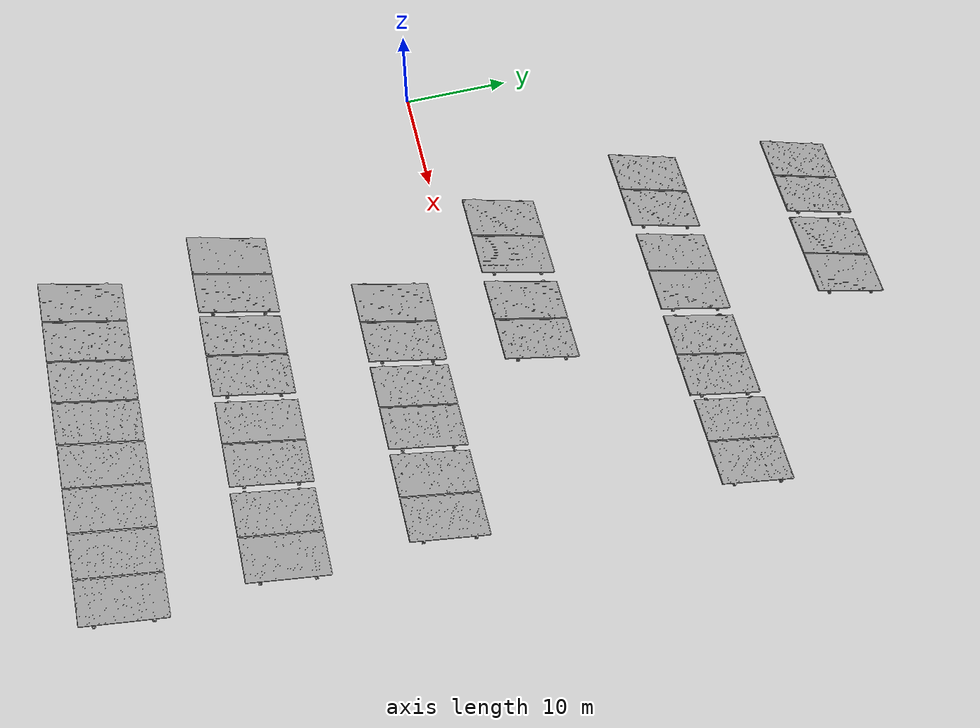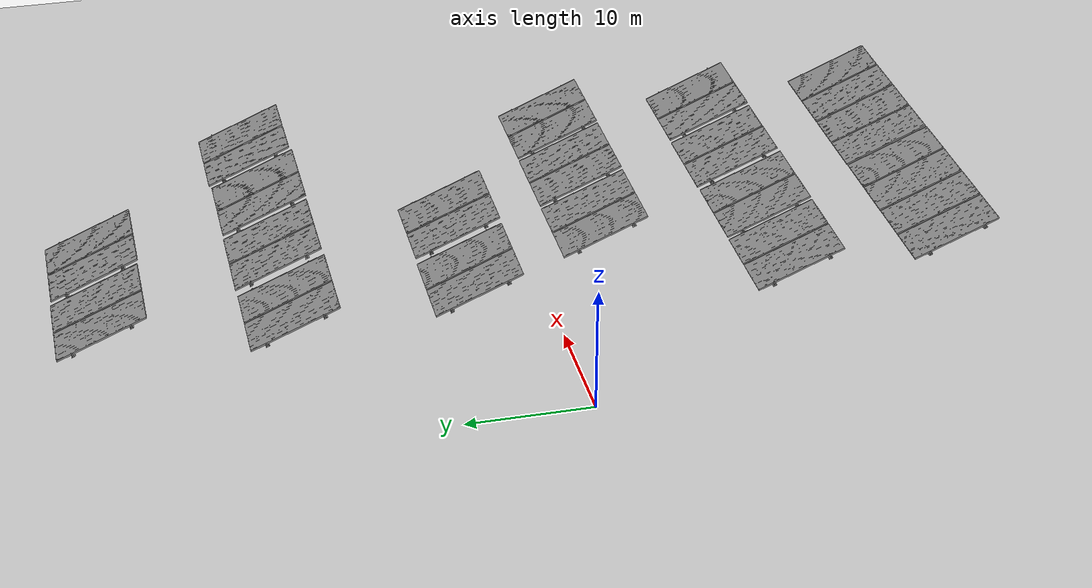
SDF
<sdf version="1.7">
 <world name="default">
  <model name="ground_plane">
   <static>1</static>
   <link name="link">
    <collision name="collision">
     <geometry><plane><normal>0 0 1</normal><size>100 100</size></plane></geometry>
     <surface>
      <contact><collide_bitmask>65535</collide_bitmask></contact>
      <friction><ode><mu>100</mu><mu2>50</mu2></ode></friction>
     </surface>
    </collision>
    <visual name="visual">
     <cast_shadows>0</cast_shadows>
     <geometry><plane><normal>0 0 1</normal><size>100 100</size></plane></geometry>
     <material>
      <script><uri>file://media/materials/scripts/gazebo.material</uri><name>Gazebo/Grey</name></script>
     </material>
    </visual>
   </link>
  </model>
  <model name="panelv4_clone">
   <link name="link_0">
    <inertial>
     <mass>1</mass>
     <inertia>
      <ixx>0.166667</ixx>
      <ixy>0</ixy>
      <ixz>0</ixz>
      <iyy>0.166667</iyy>
      <iyz>0</iyz>
      <izz>0.166667</izz>
     </inertia>
    </inertial>
    <pose>0 -0 0 -0.398224 0 0</pose>
    <gravity>0</gravity>
    <visual name="visual">
     <geometry><mesh><uri>model://Panel/panelsolar.obj</uri><scale>0.05 0.05 0.05</scale></mesh></geometry>
     <material>
      <lighting>1</lighting>
      <script><uri>file://media/materials/scripts/gazebo.material</uri><name>Gazebo/Grey</name></script>
      <shader type="pixel"><normal_map>__default__</normal_map></shader>
      <ambient>0.3 0.3 0.3 1</ambient>
      <diffuse>0.7 0.7 0.7 1</diffuse>
      <specular>0.01 0.01 0.01 1</specular>
      <emissive>0 0 0 1</emissive>
     </material>
    </visual>
    <collision name="collision">
     <geometry><mesh><uri>model://Panel/panelsolar.obj</uri><scale>0.05 0.05 0.05</scale></mesh></geometry>
     <surface>
      <friction>
       <ode><mu>1</mu><mu2>1</mu2><fdir1>0 0 0</fdir1><slip1>0</slip1><slip2>0</slip2></ode>
       <torsional>
        <coefficient>1</coefficient>
        <patch_radius>0</patch_radius>
        <surface_radius>0</surface_radius>
        <use_patch_radius>1</use_patch_radius>
        <ode><slip>0</slip></ode>
       </torsional>
      </friction>
      <bounce><restitution_coefficient>0</restitution_coefficient><threshold>1e+06</threshold></bounce>
      <contact>
       <collide_without_contact>0</collide_without_contact>
       <collide_without_contact_bitmask>1</collide_without_contact_bitmask>
       <collide_bitmask>1</collide_bitmask>
       <ode>
        <soft_cfm>0</soft_cfm>
        <soft_erp>0.2</soft_erp>
        <kp>1e+13</kp>
        <kd>1</kd>
        <max_vel>0.01</max_vel>
        <min_depth>0</min_depth>
       </ode>
       <bullet>
        <split_impulse>1</split_impulse>
        <split_impulse_penetration_threshold>-0.01</split_impulse_penetration_threshold>
        <soft_cfm>0</soft_cfm>
        <soft_erp>0.2</soft_erp>
        <kp>1e+13</kp>
        <kd>1</kd>
       </bullet>
      </contact>
     </surface>
    </collision>
   </link>
   <static>1</static>
   <pose>42 -34 2 0 -0 0</pose>
  </model>
  <model name="panelv4_clone_0">
   <link name="link_0">
    <inertial>
     <mass>1</mass>
     <inertia>
      <ixx>0.166667</ixx>
      <ixy>0</ixy>
      <ixz>0</ixz>
      <iyy>0.166667</iyy>
      <iyz>0</iyz>
      <izz>0.166667</izz>
     </inertia>
    </inertial>
    <pose>0 -0 0 -0.398224 0 0</pose>
    <gravity>0</gravity>
    <visual name="visual">
     <geometry><mesh><uri>model://Panel/panelsolar.obj</uri><scale>0.05 0.05 0.05</scale></mesh></geometry>
     <material>
      <lighting>1</lighting>
      <script><uri>file://media/materials/scripts/gazebo.material</uri><name>Gazebo/Grey</name></script>
      <shader type="pixel"><normal_map>__default__</normal_map></shader>
      <ambient>0.3 0.3 0.3 1</ambient>
      <diffuse>0.7 0.7 0.7 1</diffuse>
      <specular>0.01 0.01 0.01 1</specular>
      <emissive>0 0 0 1</emissive>
     </material>
    </visual>
    <collision name="collision">
     <geometry><mesh><uri>model://Panel/panelsolar.obj</uri><scale>0.05 0.05 0.05</scale></mesh></geometry>
     <surface>
      <friction>
       <ode><mu>1</mu><mu2>1</mu2><fdir1>0 0 0</fdir1><slip1>0</slip1><slip2>0</slip2></ode>
       <torsional>
        <coefficient>1</coefficient>
        <patch_radius>0</patch_radius>
        <surface_radius>0</surface_radius>
        <use_patch_radius>1</use_patch_radius>
        <ode><slip>0</slip></ode>
       </torsional>
      </friction>
      <bounce><restitution_coefficient>0</restitution_coefficient><threshold>1e+06</threshold></bounce>
      <contact>
       <collide_without_contact>0</collide_without_contact>
       <collide_without_contact_bitmask>1</collide_without_contact_bitmask>
       <collide_bitmask>1</collide_bitmask>
       <ode>
        <soft_cfm>0</soft_cfm>
        <soft_erp>0.2</soft_erp>
        <kp>1e+13</kp>
        <kd>1</kd>
        <max_vel>0.01</max_vel>
        <min_depth>0</min_depth>
       </ode>
       <bullet>
        <split_impulse>1</split_impulse>
        <split_impulse_penetration_threshold>-0.01</split_impulse_penetration_threshold>
        <soft_cfm>0</soft_cfm>
        <soft_erp>0.2</soft_erp>
        <kp>1e+13</kp>
        <kd>1</kd>
       </bullet>
      </contact>
     </surface>
    </collision>
   </link>
   <static>1</static>
   <pose>24.2399 -6.34265 1.99863 0 -0 0</pose>
  </model>
  <model name="panelv4_clone_1">
   <link name="link_0">
    <inertial>
     <mass>1</mass>
     <inertia>
      <ixx>0.166667</ixx>
      <ixy>0</ixy>
      <ixz>0</ixz>
      <iyy>0.166667</iyy>
      <iyz>0</iyz>
      <izz>0.166667</izz>
     </inertia>
    </inertial>
    <pose>0 -0 0 -0.398224 0 0</pose>
    <gravity>0</gravity>
    <visual name="visual">
     <geometry><mesh><uri>model://Panel/panelsolar.obj</uri><scale>0.05 0.05 0.05</scale></mesh></geometry>
     <material>
      <lighting>1</lighting>
      <script><uri>file://media/materials/scripts/gazebo.material</uri><name>Gazebo/Grey</name></script>
      <shader type="pixel"><normal_map>__default__</normal_map></shader>
      <ambient>0.3 0.3 0.3 1</ambient>
      <diffuse>0.7 0.7 0.7 1</diffuse>
      <specular>0.01 0.01 0.01 1</specular>
      <emissive>0 0 0 1</emissive>
     </material>
    </visual>
    <collision name="collision">
     <geometry><mesh><uri>model://Panel/panelsolar.obj</uri><scale>0.05 0.05 0.05</scale></mesh></geometry>
     <surface>
      <friction>
       <ode><mu>1</mu><mu2>1</mu2><fdir1>0 0 0</fdir1><slip1>0</slip1><slip2>0</slip2></ode>
       <torsional>
        <coefficient>1</coefficient>
        <patch_radius>0</patch_radius>
        <surface_radius>0</surface_radius>
        <use_patch_radius>1</use_patch_radius>
        <ode><slip>0</slip></ode>
       </torsional>
      </friction>
      <bounce><restitution_coefficient>0</restitution_coefficient><threshold>1e+06</threshold></bounce>
      <contact>
       <collide_without_contact>0</collide_without_contact>
       <collide_without_contact_bitmask>1</collide_without_contact_bitmask>
       <collide_bitmask>1</collide_bitmask>
       <ode>
        <soft_cfm>0</soft_cfm>
        <soft_erp>0.2</soft_erp>
        <kp>1e+13</kp>
        <kd>1</kd>
        <max_vel>0.01</max_vel>
        <min_depth>0</min_depth>
       </ode>
       <bullet>
        <split_impulse>1</split_impulse>
        <split_impulse_penetration_threshold>-0.01</split_impulse_penetration_threshold>
        <soft_cfm>0</soft_cfm>
        <soft_erp>0.2</soft_erp>
        <kp>1e+13</kp>
        <kd>1</kd>
       </bullet>
      </contact>
     </surface>
    </collision>
   </link>
   <static>1</static>
   <pose>32.7705 -6.37698 1.99863 0 -0 0</pose>
  </model>
  <model name="panelv4_clone_2">
   <link name="link_0">
    <inertial>
     <mass>1</mass>
     <inertia>
      <ixx>0.166667</ixx>
      <ixy>0</ixy>
      <ixz>0</ixz>
      <iyy>0.166667</iyy>
      <iyz>0</iyz>
      <izz>0.166667</izz>
     </inertia>
    </inertial>
    <pose>0 -0 0 -0.398224 0 0</pose>
    <gravity>0</gravity>
    <visual name="visual">
     <geometry><mesh><uri>model://Panel/panelsolar.obj</uri><scale>0.05 0.05 0.05</scale></mesh></geometry>
     <material>
      <lighting>1</lighting>
      <script><uri>file://media/materials/scripts/gazebo.material</uri><name>Gazebo/Grey</name></script>
      <shader type="pixel"><normal_map>__default__</normal_map></shader>
      <ambient>0.3 0.3 0.3 1</ambient>
      <diffuse>0.7 0.7 0.7 1</diffuse>
      <specular>0.01 0.01 0.01 1</specular>
      <emissive>0 0 0 1</emissive>
     </material>
    </visual>
    <collision name="collision">
     <geometry><mesh><uri>model://Panel/panelsolar.obj</uri><scale>0.05 0.05 0.05</scale></mesh></geometry>
     <surface>
      <friction>
       <ode><mu>1</mu><mu2>1</mu2><fdir1>0 0 0</fdir1><slip1>0</slip1><slip2>0</slip2></ode>
       <torsional>
        <coefficient>1</coefficient>
        <patch_radius>0</patch_radius>
        <surface_radius>0</surface_radius>
        <use_patch_radius>1</use_patch_radius>
        <ode><slip>0</slip></ode>
       </torsional>
      </friction>
      <bounce><restitution_coefficient>0</restitution_coefficient><threshold>1e+06</threshold></bounce>
      <contact>
       <collide_without_contact>0</collide_without_contact>
       <collide_without_contact_bitmask>1</collide_without_contact_bitmask>
       <collide_bitmask>1</collide_bitmask>
       <ode>
        <soft_cfm>0</soft_cfm>
        <soft_erp>0.2</soft_erp>
        <kp>1e+13</kp>
        <kd>1</kd>
        <max_vel>0.01</max_vel>
        <min_depth>0</min_depth>
       </ode>
       <bullet>
        <split_impulse>1</split_impulse>
        <split_impulse_penetration_threshold>-0.01</split_impulse_penetration_threshold>
        <soft_cfm>0</soft_cfm>
        <soft_erp>0.2</soft_erp>
        <kp>1e+13</kp>
        <kd>1</kd>
       </bullet>
      </contact>
     </surface>
    </collision>
   </link>
   <static>1</static>
   <pose>24.345 -20.2567 1.99863 0 -0 0</pose>
  </model>
  <model name="panelv4_clone_3">
   <link name="link_0">
    <inertial>
     <mass>1</mass>
     <inertia>
      <ixx>0.166667</ixx>
      <ixy>0</ixy>
      <ixz>0</ixz>
      <iyy>0.166667</iyy>
      <iyz>0</iyz>
      <izz>0.166667</izz>
     </inertia>
    </inertial>
    <pose>0 -0 0 -0.398224 0 0</pose>
    <gravity>0</gravity>
    <visual name="visual">
     <geometry><mesh><uri>model://Panel/panelsolar.obj</uri><scale>0.05 0.05 0.05</scale></mesh></geometry>
     <material>
      <lighting>1</lighting>
      <script><uri>file://media/materials/scripts/gazebo.material</uri><name>Gazebo/Grey</name></script>
      <shader type="pixel"><normal_map>__default__</normal_map></shader>
      <ambient>0.3 0.3 0.3 1</ambient>
      <diffuse>0.7 0.7 0.7 1</diffuse>
      <specular>0.01 0.01 0.01 1</specular>
      <emissive>0 0 0 1</emissive>
     </material>
    </visual>
    <collision name="collision">
     <geometry><mesh><uri>model://Panel/panelsolar.obj</uri><scale>0.05 0.05 0.05</scale></mesh></geometry>
     <surface>
      <friction>
       <ode><mu>1</mu><mu2>1</mu2><fdir1>0 0 0</fdir1><slip1>0</slip1><slip2>0</slip2></ode>
       <torsional>
        <coefficient>1</coefficient>
        <patch_radius>0</patch_radius>
        <surface_radius>0</surface_radius>
        <use_patch_radius>1</use_patch_radius>
        <ode><slip>0</slip></ode>
       </torsional>
      </friction>
      <bounce><restitution_coefficient>0</restitution_coefficient><threshold>1e+06</threshold></bounce>
      <contact>
       <collide_without_contact>0</collide_without_contact>
       <collide_without_contact_bitmask>1</collide_without_contact_bitmask>
       <collide_bitmask>1</collide_bitmask>
       <ode>
        <soft_cfm>0</soft_cfm>
        <soft_erp>0.2</soft_erp>
        <kp>1e+13</kp>
        <kd>1</kd>
        <max_vel>0.01</max_vel>
        <min_depth>0</min_depth>
       </ode>
       <bullet>
        <split_impulse>1</split_impulse>
        <split_impulse_penetration_threshold>-0.01</split_impulse_penetration_threshold>
        <soft_cfm>0</soft_cfm>
        <soft_erp>0.2</soft_erp>
        <kp>1e+13</kp>
        <kd>1</kd>
       </bullet>
      </contact>
     </surface>
    </collision>
   </link>
   <static>1</static>
   <pose>33.8775 -34.0033 1.99863 0 -0 0</pose>
  </model>
  <model name="panelv4_clone_4">
   <link name="link_0">
    <inertial>
     <mass>1</mass>
     <inertia>
      <ixx>0.166667</ixx>
      <ixy>0</ixy>
      <ixz>0</ixz>
      <iyy>0.166667</iyy>
      <iyz>0</iyz>
      <izz>0.166667</izz>
     </inertia>
    </inertial>
    <pose>0 -0 0 -0.398224 0 0</pose>
    <gravity>0</gravity>
    <visual name="visual">
     <geometry><mesh><uri>model://Panel/panelsolar.obj</uri><scale>0.05 0.05 0.05</scale></mesh></geometry>
     <material>
      <lighting>1</lighting>
      <script><uri>file://media/materials/scripts/gazebo.material</uri><name>Gazebo/Grey</name></script>
      <shader type="pixel"><normal_map>__default__</normal_map></shader>
      <ambient>0.3 0.3 0.3 1</ambient>
      <diffuse>0.7 0.7 0.7 1</diffuse>
      <specular>0.01 0.01 0.01 1</specular>
      <emissive>0 0 0 1</emissive>
     </material>
    </visual>
    <collision name="collision">
     <geometry><mesh><uri>model://Panel/panelsolar.obj</uri><scale>0.05 0.05 0.05</scale></mesh></geometry>
     <surface>
      <friction>
       <ode><mu>1</mu><mu2>1</mu2><fdir1>0 0 0</fdir1><slip1>0</slip1><slip2>0</slip2></ode>
       <torsional>
        <coefficient>1</coefficient>
        <patch_radius>0</patch_radius>
        <surface_radius>0</surface_radius>
        <use_patch_radius>1</use_patch_radius>
        <ode><slip>0</slip></ode>
       </torsional>
      </friction>
      <bounce><restitution_coefficient>0</restitution_coefficient><threshold>1e+06</threshold></bounce>
      <contact>
       <collide_without_contact>0</collide_without_contact>
       <collide_without_contact_bitmask>1</collide_without_contact_bitmask>
       <collide_bitmask>1</collide_bitmask>
       <ode>
        <soft_cfm>0</soft_cfm>
        <soft_erp>0.2</soft_erp>
        <kp>1e+13</kp>
        <kd>1</kd>
        <max_vel>0.01</max_vel>
        <min_depth>0</min_depth>
       </ode>
       <bullet>
        <split_impulse>1</split_impulse>
        <split_impulse_penetration_threshold>-0.01</split_impulse_penetration_threshold>
        <soft_cfm>0</soft_cfm>
        <soft_erp>0.2</soft_erp>
        <kp>1e+13</kp>
        <kd>1</kd>
       </bullet>
      </contact>
     </surface>
    </collision>
   </link>
   <static>1</static>
   <pose>25.738 -34.035 1.99863 0 -0 0</pose>
  </model>
  <model name="panelv4_clone_5">
   <link name="link_0">
    <inertial>
     <mass>1</mass>
     <inertia>
      <ixx>0.166667</ixx>
      <ixy>0</ixy>
      <ixz>0</ixz>
      <iyy>0.166667</iyy>
      <iyz>0</iyz>
      <izz>0.166667</izz>
     </inertia>
    </inertial>
    <pose>0 -0 0 -0.398224 0 0</pose>
    <gravity>0</gravity>
    <visual name="visual">
     <geometry><mesh><uri>model://Panel/panelsolar.obj</uri><scale>0.05 0.05 0.05</scale></mesh></geometry>
     <material>
      <lighting>1</lighting>
      <script><uri>file://media/materials/scripts/gazebo.material</uri><name>Gazebo/Grey</name></script>
      <shader type="pixel"><normal_map>__default__</normal_map></shader>
      <ambient>0.3 0.3 0.3 1</ambient>
      <diffuse>0.7 0.7 0.7 1</diffuse>
      <specular>0.01 0.01 0.01 1</specular>
      <emissive>0 0 0 1</emissive>
     </material>
    </visual>
    <collision name="collision">
     <geometry><mesh><uri>model://Panel/panelsolar.obj</uri><scale>0.05 0.05 0.05</scale></mesh></geometry>
     <surface>
      <friction>
       <ode><mu>1</mu><mu2>1</mu2><fdir1>0 0 0</fdir1><slip1>0</slip1><slip2>0</slip2></ode>
       <torsional>
        <coefficient>1</coefficient>
        <patch_radius>0</patch_radius>
        <surface_radius>0</surface_radius>
        <use_patch_radius>1</use_patch_radius>
        <ode><slip>0</slip></ode>
       </torsional>
      </friction>
      <bounce><restitution_coefficient>0</restitution_coefficient><threshold>1e+06</threshold></bounce>
      <contact>
       <collide_without_contact>0</collide_without_contact>
       <collide_without_contact_bitmask>1</collide_without_contact_bitmask>
       <collide_bitmask>1</collide_bitmask>
       <ode>
        <soft_cfm>0</soft_cfm>
        <soft_erp>0.2</soft_erp>
        <kp>1e+13</kp>
        <kd>1</kd>
        <max_vel>0.01</max_vel>
        <min_depth>0</min_depth>
       </ode>
       <bullet>
        <split_impulse>1</split_impulse>
        <split_impulse_penetration_threshold>-0.01</split_impulse_penetration_threshold>
        <soft_cfm>0</soft_cfm>
        <soft_erp>0.2</soft_erp>
        <kp>1e+13</kp>
        <kd>1</kd>
       </bullet>
      </contact>
     </surface>
    </collision>
   </link>
   <static>1</static>
   <pose>17.6278 -34.0474 1.99863 0 -0 0</pose>
  </model>
  <model name="panelv4_clone_7">
   <link name="link_0">
    <inertial>
     <mass>1</mass>
     <inertia>
      <ixx>0.166667</ixx>
      <ixy>0</ixy>
      <ixz>0</ixz>
      <iyy>0.166667</iyy>
      <iyz>0</iyz>
      <izz>0.166667</izz>
     </inertia>
    </inertial>
    <pose>0 -0 0 -0.398224 0 0</pose>
    <gravity>0</gravity>
    <visual name="visual">
     <geometry><mesh><uri>model://Panel/panelsolar.obj</uri><scale>0.05 0.05 0.05</scale></mesh></geometry>
     <material>
      <lighting>1</lighting>
      <script><uri>file://media/materials/scripts/gazebo.material</uri><name>Gazebo/Grey</name></script>
      <shader type="pixel"><normal_map>__default__</normal_map></shader>
      <ambient>0.3 0.3 0.3 1</ambient>
      <diffuse>0.7 0.7 0.7 1</diffuse>
      <specular>0.01 0.01 0.01 1</specular>
      <emissive>0 0 0 1</emissive>
     </material>
    </visual>
    <collision name="collision">
     <geometry><mesh><uri>model://Panel/panelsolar.obj</uri><scale>0.05 0.05 0.05</scale></mesh></geometry>
     <surface>
      <friction>
       <ode><mu>1</mu><mu2>1</mu2><fdir1>0 0 0</fdir1><slip1>0</slip1><slip2>0</slip2></ode>
       <torsional>
        <coefficient>1</coefficient>
        <patch_radius>0</patch_radius>
        <surface_radius>0</surface_radius>
        <use_patch_radius>1</use_patch_radius>
        <ode><slip>0</slip></ode>
       </torsional>
      </friction>
      <bounce><restitution_coefficient>0</restitution_coefficient><threshold>1e+06</threshold></bounce>
      <contact>
       <collide_without_contact>0</collide_without_contact>
       <collide_without_contact_bitmask>1</collide_without_contact_bitmask>
       <collide_bitmask>1</collide_bitmask>
       <ode>
        <soft_cfm>0</soft_cfm>
        <soft_erp>0.2</soft_erp>
        <kp>1e+13</kp>
        <kd>1</kd>
        <max_vel>0.01</max_vel>
        <min_depth>0</min_depth>
       </ode>
       <bullet>
        <split_impulse>1</split_impulse>
        <split_impulse_penetration_threshold>-0.01</split_impulse_penetration_threshold>
        <soft_cfm>0</soft_cfm>
        <soft_erp>0.2</soft_erp>
        <kp>1e+13</kp>
        <kd>1</kd>
       </bullet>
      </contact>
     </surface>
    </collision>
   </link>
   <static>1</static>
   <pose>41.2539 -6.40936 1.99863 0 -0 0</pose>
  </model>
  <model name="panelv4_clone_8">
   <link name="link_0">
    <inertial>
     <mass>1</mass>
     <inertia>
      <ixx>0.166667</ixx>
      <ixy>0</ixy>
      <ixz>0</ixz>
      <iyy>0.166667</iyy>
      <iyz>0</iyz>
      <izz>0.166667</izz>
     </inertia>
    </inertial>
    <pose>0 -0 0 -0.398224 0 0</pose>
    <gravity>0</gravity>
    <visual name="visual">
     <geometry><mesh><uri>model://Panel/panelsolar.obj</uri><scale>0.05 0.05 0.05</scale></mesh></geometry>
     <material>
      <lighting>1</lighting>
      <script><uri>file://media/materials/scripts/gazebo.material</uri><name>Gazebo/Grey</name></script>
      <shader type="pixel"><normal_map>__default__</normal_map></shader>
      <ambient>0.3 0.3 0.3 1</ambient>
      <diffuse>0.7 0.7 0.7 1</diffuse>
      <specular>0.01 0.01 0.01 1</specular>
      <emissive>0 0 0 1</emissive>
     </material>
    </visual>
    <collision name="collision">
     <geometry><mesh><uri>model://Panel/panelsolar.obj</uri><scale>0.05 0.05 0.05</scale></mesh></geometry>
     <surface>
      <friction>
       <ode><mu>1</mu><mu2>1</mu2><fdir1>0 0 0</fdir1><slip1>0</slip1><slip2>0</slip2></ode>
       <torsional>
        <coefficient>1</coefficient>
        <patch_radius>0</patch_radius>
        <surface_radius>0</surface_radius>
        <use_patch_radius>1</use_patch_radius>
        <ode><slip>0</slip></ode>
       </torsional>
      </friction>
      <bounce><restitution_coefficient>0</restitution_coefficient><threshold>1e+06</threshold></bounce>
      <contact>
       <collide_without_contact>0</collide_without_contact>
       <collide_without_contact_bitmask>1</collide_without_contact_bitmask>
       <collide_bitmask>1</collide_bitmask>
       <ode>
        <soft_cfm>0</soft_cfm>
        <soft_erp>0.2</soft_erp>
        <kp>1e+13</kp>
        <kd>1</kd>
        <max_vel>0.01</max_vel>
        <min_depth>0</min_depth>
       </ode>
       <bullet>
        <split_impulse>1</split_impulse>
        <split_impulse_penetration_threshold>-0.01</split_impulse_penetration_threshold>
        <soft_cfm>0</soft_cfm>
        <soft_erp>0.2</soft_erp>
        <kp>1e+13</kp>
        <kd>1</kd>
       </bullet>
      </contact>
     </surface>
    </collision>
   </link>
   <static>1</static>
   <pose>15.9212 -20.2278 1.99863 0 -0 0</pose>
  </model>
  <model name="panelv4_clone_9">
   <link name="link_0">
    <inertial>
     <mass>1</mass>
     <inertia>
      <ixx>0.166667</ixx>
      <ixy>0</ixy>
      <ixz>0</ixz>
      <iyy>0.166667</iyy>
      <iyz>0</iyz>
      <izz>0.166667</izz>
     </inertia>
    </inertial>
    <pose>0 -0 0 -0.398224 0 0</pose>
    <gravity>0</gravity>
    <visual name="visual">
     <geometry><mesh><uri>model://Panel/panelsolar.obj</uri><scale>0.05 0.05 0.05</scale></mesh></geometry>
     <material>
      <lighting>1</lighting>
      <script><uri>file://media/materials/scripts/gazebo.material</uri><name>Gazebo/Grey</name></script>
      <shader type="pixel"><normal_map>__default__</normal_map></shader>
      <ambient>0.3 0.3 0.3 1</ambient>
      <diffuse>0.7 0.7 0.7 1</diffuse>
      <specular>0.01 0.01 0.01 1</specular>
      <emissive>0 0 0 1</emissive>
     </material>
    </visual>
    <collision name="collision">
     <geometry><mesh><uri>model://Panel/panelsolar.obj</uri><scale>0.05 0.05 0.05</scale></mesh></geometry>
     <surface>
      <friction>
       <ode><mu>1</mu><mu2>1</mu2><fdir1>0 0 0</fdir1><slip1>0</slip1><slip2>0</slip2></ode>
       <torsional>
        <coefficient>1</coefficient>
        <patch_radius>0</patch_radius>
        <surface_radius>0</surface_radius>
        <use_patch_radius>1</use_patch_radius>
        <ode><slip>0</slip></ode>
       </torsional>
      </friction>
      <bounce><restitution_coefficient>0</restitution_coefficient><threshold>1e+06</threshold></bounce>
      <contact>
       <collide_without_contact>0</collide_without_contact>
       <collide_without_contact_bitmask>1</collide_without_contact_bitmask>
       <collide_bitmask>1</collide_bitmask>
       <ode>
        <soft_cfm>0</soft_cfm>
        <soft_erp>0.2</soft_erp>
        <kp>1e+13</kp>
        <kd>1</kd>
        <max_vel>0.01</max_vel>
        <min_depth>0</min_depth>
       </ode>
       <bullet>
        <split_impulse>1</split_impulse>
        <split_impulse_penetration_threshold>-0.01</split_impulse_penetration_threshold>
        <soft_cfm>0</soft_cfm>
        <soft_erp>0.2</soft_erp>
        <kp>1e+13</kp>
        <kd>1</kd>
       </bullet>
      </contact>
     </surface>
    </collision>
   </link>
   <static>1</static>
   <pose>32.9785 -20.202 1.99863 0 -0 0</pose>
  </model>
  <model name="panelv4_clone_10">
   <link name="link_0">
    <inertial>
     <mass>1</mass>
     <inertia>
      <ixx>0.166667</ixx>
      <ixy>0</ixy>
      <ixz>0</ixz>
      <iyy>0.166667</iyy>
      <iyz>0</iyz>
      <izz>0.166667</izz>
     </inertia>
    </inertial>
    <pose>0 -0 0 -0.398224 0 0</pose>
    <gravity>0</gravity>
    <visual name="visual">
     <geometry><mesh><uri>model://Panel/panelsolar.obj</uri><scale>0.05 0.05 0.05</scale></mesh></geometry>
     <material>
      <lighting>1</lighting>
      <script><uri>file://media/materials/scripts/gazebo.material</uri><name>Gazebo/Grey</name></script>
      <shader type="pixel"><normal_map>__default__</normal_map></shader>
      <ambient>0.3 0.3 0.3 1</ambient>
      <diffuse>0.7 0.7 0.7 1</diffuse>
      <specular>0.01 0.01 0.01 1</specular>
      <emissive>0 0 0 1</emissive>
     </material>
    </visual>
    <collision name="collision">
     <geometry><mesh><uri>model://Panel/panelsolar.obj</uri><scale>0.05 0.05 0.05</scale></mesh></geometry>
     <surface>
      <friction>
       <ode><mu>1</mu><mu2>1</mu2><fdir1>0 0 0</fdir1><slip1>0</slip1><slip2>0</slip2></ode>
       <torsional>
        <coefficient>1</coefficient>
        <patch_radius>0</patch_radius>
        <surface_radius>0</surface_radius>
        <use_patch_radius>1</use_patch_radius>
        <ode><slip>0</slip></ode>
       </torsional>
      </friction>
      <bounce><restitution_coefficient>0</restitution_coefficient><threshold>1e+06</threshold></bounce>
      <contact>
       <collide_without_contact>0</collide_without_contact>
       <collide_without_contact_bitmask>1</collide_without_contact_bitmask>
       <collide_bitmask>1</collide_bitmask>
       <ode>
        <soft_cfm>0</soft_cfm>
        <soft_erp>0.2</soft_erp>
        <kp>1e+13</kp>
        <kd>1</kd>
        <max_vel>0.01</max_vel>
        <min_depth>0</min_depth>
       </ode>
       <bullet>
        <split_impulse>1</split_impulse>
        <split_impulse_penetration_threshold>-0.01</split_impulse_penetration_threshold>
        <soft_cfm>0</soft_cfm>
        <soft_erp>0.2</soft_erp>
        <kp>1e+13</kp>
        <kd>1</kd>
       </bullet>
      </contact>
     </surface>
    </collision>
   </link>
   <static>1</static>
   <pose>41.5548 -20.2526 1.99863 0 -0 0</pose>
  </model>
  <model name="panelv4_clone_6_clone">
   <link name="link_0">
    <inertial>
     <mass>1</mass>
     <inertia>
      <ixx>0.166667</ixx>
      <ixy>0</ixy>
      <ixz>0</ixz>
      <iyy>0.166667</iyy>
      <iyz>0</iyz>
      <izz>0.166667</izz>
     </inertia>
    </inertial>
    <pose>0 -0 0 -0.398224 0 0</pose>
    <gravity>0</gravity>
    <visual name="visual">
     <geometry><mesh><uri>model://Panel/panelsolar.obj</uri><scale>0.05 0.05 0.05</scale></mesh></geometry>
     <material>
      <lighting>1</lighting>
      <script><uri>file://media/materials/scripts/gazebo.material</uri><name>Gazebo/Grey</name></script>
      <shader type="pixel"><normal_map>__default__</normal_map></shader>
      <ambient>0.3 0.3 0.3 1</ambient>
      <diffuse>0.7 0.7 0.7 1</diffuse>
      <specular>0.01 0.01 0.01 1</specular>
      <emissive>0 0 0 1</emissive>
     </material>
    </visual>
    <collision name="collision">
     <geometry><mesh><uri>model://Panel/panelsolar.obj</uri><scale>0.05 0.05 0.05</scale></mesh></geometry>
     <surface>
      <friction>
       <ode><mu>1</mu><mu2>1</mu2><fdir1>0 0 0</fdir1><slip1>0</slip1><slip2>0</slip2></ode>
       <torsional>
        <coefficient>1</coefficient>
        <patch_radius>0</patch_radius>
        <surface_radius>0</surface_radius>
        <use_patch_radius>1</use_patch_radius>
        <ode><slip>0</slip></ode>
       </torsional>
      </friction>
      <bounce><restitution_coefficient>0</restitution_coefficient><threshold>1e+06</threshold></bounce>
      <contact>
       <collide_without_contact>0</collide_without_contact>
       <collide_without_contact_bitmask>1</collide_without_contact_bitmask>
       <collide_bitmask>1</collide_bitmask>
       <ode>
        <soft_cfm>0</soft_cfm>
        <soft_erp>0.2</soft_erp>
        <kp>1e+13</kp>
        <kd>1</kd>
        <max_vel>0.01</max_vel>
        <min_depth>0</min_depth>
       </ode>
       <bullet>
        <split_impulse>1</split_impulse>
        <split_impulse_penetration_threshold>-0.01</split_impulse_penetration_threshold>
        <soft_cfm>0</soft_cfm>
        <soft_erp>0.2</soft_erp>
        <kp>1e+13</kp>
        <kd>1</kd>
       </bullet>
      </contact>
     </surface>
    </collision>
   </link>
   <static>1</static>
   <pose>26.7578 5.4271 1.99863 0 -0 0</pose>
  </model>
  <model name="panelv4_clone_6_clone_0">
   <link name="link_0">
    <inertial>
     <mass>1</mass>
     <inertia>
      <ixx>0.166667</ixx>
      <ixy>0</ixy>
      <ixz>0</ixz>
      <iyy>0.166667</iyy>
      <iyz>0</iyz>
      <izz>0.166667</izz>
     </inertia>
    </inertial>
    <pose>0 -0 0 -0.398224 0 0</pose>
    <gravity>0</gravity>
    <visual name="visual">
     <geometry><mesh><uri>model://Panel/panelsolar.obj</uri><scale>0.05 0.05 0.05</scale></mesh></geometry>
     <material>
      <lighting>1</lighting>
      <script><uri>file://media/materials/scripts/gazebo.material</uri><name>Gazebo/Grey</name></script>
      <shader type="pixel"><normal_map>__default__</normal_map></shader>
      <ambient>0.3 0.3 0.3 1</ambient>
      <diffuse>0.7 0.7 0.7 1</diffuse>
      <specular>0.01 0.01 0.01 1</specular>
      <emissive>0 0 0 1</emissive>
     </material>
    </visual>
    <collision name="collision">
     <geometry><mesh><uri>model://Panel/panelsolar.obj</uri><scale>0.05 0.05 0.05</scale></mesh></geometry>
     <surface>
      <friction>
       <ode><mu>1</mu><mu2>1</mu2><fdir1>0 0 0</fdir1><slip1>0</slip1><slip2>0</slip2></ode>
       <torsional>
        <coefficient>1</coefficient>
        <patch_radius>0</patch_radius>
        <surface_radius>0</surface_radius>
        <use_patch_radius>1</use_patch_radius>
        <ode><slip>0</slip></ode>
       </torsional>
      </friction>
      <bounce><restitution_coefficient>0</restitution_coefficient><threshold>1e+06</threshold></bounce>
      <contact>
       <collide_without_contact>0</collide_without_contact>
       <collide_without_contact_bitmask>1</collide_without_contact_bitmask>
       <collide_bitmask>1</collide_bitmask>
       <ode>
        <soft_cfm>0</soft_cfm>
        <soft_erp>0.2</soft_erp>
        <kp>1e+13</kp>
        <kd>1</kd>
        <max_vel>0.01</max_vel>
        <min_depth>0</min_depth>
       </ode>
       <bullet>
        <split_impulse>1</split_impulse>
        <split_impulse_penetration_threshold>-0.01</split_impulse_penetration_threshold>
        <soft_cfm>0</soft_cfm>
        <soft_erp>0.2</soft_erp>
        <kp>1e+13</kp>
        <kd>1</kd>
       </bullet>
      </contact>
     </surface>
    </collision>
   </link>
   <static>1</static>
   <pose>17.8237 5.49991 1.99863 0 -0 0</pose>
  </model>
  <model name="panelv4_clone_6_clone_0_clone">
   <link name="link_0">
    <inertial>
     <mass>1</mass>
     <inertia>
      <ixx>0.166667</ixx>
      <ixy>0</ixy>
      <ixz>0</ixz>
      <iyy>0.166667</iyy>
      <iyz>0</iyz>
      <izz>0.166667</izz>
     </inertia>
    </inertial>
    <pose>0 -0 0 -0.398224 0 0</pose>
    <gravity>0</gravity>
    <visual name="visual">
     <geometry><mesh><uri>model://Panel/panelsolar.obj</uri><scale>0.05 0.05 0.05</scale></mesh></geometry>
     <material>
      <lighting>1</lighting>
      <script><uri>file://media/materials/scripts/gazebo.material</uri><name>Gazebo/Grey</name></script>
      <shader type="pixel"><normal_map>__default__</normal_map></shader>
      <ambient>0.3 0.3 0.3 1</ambient>
      <diffuse>0.7 0.7 0.7 1</diffuse>
      <specular>0.01 0.01 0.01 1</specular>
      <emissive>0 0 0 1</emissive>
     </material>
    </visual>
    <collision name="collision">
     <geometry><mesh><uri>model://Panel/panelsolar.obj</uri><scale>0.05 0.05 0.05</scale></mesh></geometry>
     <surface>
      <friction>
       <ode><mu>1</mu><mu2>1</mu2><fdir1>0 0 0</fdir1><slip1>0</slip1><slip2>0</slip2></ode>
       <torsional>
        <coefficient>1</coefficient>
        <patch_radius>0</patch_radius>
        <surface_radius>0</surface_radius>
        <use_patch_radius>1</use_patch_radius>
        <ode><slip>0</slip></ode>
       </torsional>
      </friction>
      <bounce><restitution_coefficient>0</restitution_coefficient><threshold>1e+06</threshold></bounce>
      <contact>
       <collide_without_contact>0</collide_without_contact>
       <collide_without_contact_bitmask>1</collide_without_contact_bitmask>
       <collide_bitmask>1</collide_bitmask>
       <ode>
        <soft_cfm>0</soft_cfm>
        <soft_erp>0.2</soft_erp>
        <kp>1e+13</kp>
        <kd>1</kd>
        <max_vel>0.01</max_vel>
        <min_depth>0</min_depth>
       </ode>
       <bullet>
        <split_impulse>1</split_impulse>
        <split_impulse_penetration_threshold>-0.01</split_impulse_penetration_threshold>
        <soft_cfm>0</soft_cfm>
        <soft_erp>0.2</soft_erp>
        <kp>1e+13</kp>
        <kd>1</kd>
       </bullet>
      </contact>
     </surface>
    </collision>
   </link>
   <static>1</static>
   <pose>42.4145 20.4305 1.99863 0 -0 0</pose>
  </model>
  <model name="panelv4_clone_6_clone_0_clone_0">
   <link name="link_0">
    <inertial>
     <mass>1</mass>
     <inertia>
      <ixx>0.166667</ixx>
      <ixy>0</ixy>
      <ixz>0</ixz>
      <iyy>0.166667</iyy>
      <iyz>0</iyz>
      <izz>0.166667</izz>
     </inertia>
    </inertial>
    <pose>0 -0 0 -0.398224 0 0</pose>
    <gravity>0</gravity>
    <visual name="visual">
     <geometry><mesh><uri>model://Panel/panelsolar.obj</uri><scale>0.05 0.05 0.05</scale></mesh></geometry>
     <material>
      <lighting>1</lighting>
      <script><uri>file://media/materials/scripts/gazebo.material</uri><name>Gazebo/Grey</name></script>
      <shader type="pixel"><normal_map>__default__</normal_map></shader>
      <ambient>0.3 0.3 0.3 1</ambient>
      <diffuse>0.7 0.7 0.7 1</diffuse>
      <specular>0.01 0.01 0.01 1</specular>
      <emissive>0 0 0 1</emissive>
     </material>
    </visual>
    <collision name="collision">
     <geometry><mesh><uri>model://Panel/panelsolar.obj</uri><scale>0.05 0.05 0.05</scale></mesh></geometry>
     <surface>
      <friction>
       <ode><mu>1</mu><mu2>1</mu2><fdir1>0 0 0</fdir1><slip1>0</slip1><slip2>0</slip2></ode>
       <torsional>
        <coefficient>1</coefficient>
        <patch_radius>0</patch_radius>
        <surface_radius>0</surface_radius>
        <use_patch_radius>1</use_patch_radius>
        <ode><slip>0</slip></ode>
       </torsional>
      </friction>
      <bounce><restitution_coefficient>0</restitution_coefficient><threshold>1e+06</threshold></bounce>
      <contact>
       <collide_without_contact>0</collide_without_contact>
       <collide_without_contact_bitmask>1</collide_without_contact_bitmask>
       <collide_bitmask>1</collide_bitmask>
       <ode>
        <soft_cfm>0</soft_cfm>
        <soft_erp>0.2</soft_erp>
        <kp>1e+13</kp>
        <kd>1</kd>
        <max_vel>0.01</max_vel>
        <min_depth>0</min_depth>
       </ode>
       <bullet>
        <split_impulse>1</split_impulse>
        <split_impulse_penetration_threshold>-0.01</split_impulse_penetration_threshold>
        <soft_cfm>0</soft_cfm>
        <soft_erp>0.2</soft_erp>
        <kp>1e+13</kp>
        <kd>1</kd>
       </bullet>
      </contact>
     </surface>
    </collision>
   </link>
   <static>1</static>
   <pose>33.924 20.2472 1.99863 0 -0 0</pose>
  </model>
  <model name="panelv4_clone_6_clone_0_clone_1">
   <link name="link_0">
    <inertial>
     <mass>1</mass>
     <inertia>
      <ixx>0.166667</ixx>
      <ixy>0</ixy>
      <ixz>0</ixz>
      <iyy>0.166667</iyy>
      <iyz>0</iyz>
      <izz>0.166667</izz>
     </inertia>
    </inertial>
    <pose>0 -0 0 -0.398224 0 0</pose>
    <gravity>0</gravity>
    <visual name="visual">
     <geometry><mesh><uri>model://Panel/panelsolar.obj</uri><scale>0.05 0.05 0.05</scale></mesh></geometry>
     <material>
      <lighting>1</lighting>
      <script><uri>file://media/materials/scripts/gazebo.material</uri><name>Gazebo/Grey</name></script>
      <shader type="pixel"><normal_map>__default__</normal_map></shader>
      <ambient>0.3 0.3 0.3 1</ambient>
      <diffuse>0.7 0.7 0.7 1</diffuse>
      <specular>0.01 0.01 0.01 1</specular>
      <emissive>0 0 0 1</emissive>
     </material>
    </visual>
    <collision name="collision">
     <geometry><mesh><uri>model://Panel/panelsolar.obj</uri><scale>0.05 0.05 0.05</scale></mesh></geometry>
     <surface>
      <friction>
       <ode><mu>1</mu><mu2>1</mu2><fdir1>0 0 0</fdir1><slip1>0</slip1><slip2>0</slip2></ode>
       <torsional>
        <coefficient>1</coefficient>
        <patch_radius>0</patch_radius>
        <surface_radius>0</surface_radius>
        <use_patch_radius>1</use_patch_radius>
        <ode><slip>0</slip></ode>
       </torsional>
      </friction>
      <bounce><restitution_coefficient>0</restitution_coefficient><threshold>1e+06</threshold></bounce>
      <contact>
       <collide_without_contact>0</collide_without_contact>
       <collide_without_contact_bitmask>1</collide_without_contact_bitmask>
       <collide_bitmask>1</collide_bitmask>
       <ode>
        <soft_cfm>0</soft_cfm>
        <soft_erp>0.2</soft_erp>
        <kp>1e+13</kp>
        <kd>1</kd>
        <max_vel>0.01</max_vel>
        <min_depth>0</min_depth>
       </ode>
       <bullet>
        <split_impulse>1</split_impulse>
        <split_impulse_penetration_threshold>-0.01</split_impulse_penetration_threshold>
        <soft_cfm>0</soft_cfm>
        <soft_erp>0.2</soft_erp>
        <kp>1e+13</kp>
        <kd>1</kd>
       </bullet>
      </contact>
     </surface>
    </collision>
   </link>
   <static>1</static>
   <pose>25.2084 20.2914 1.99863 0 -0 0</pose>
  </model>
  <model name="panelv4_clone_6_clone_0_clone_2">
   <link name="link_0">
    <inertial>
     <mass>1</mass>
     <inertia>
      <ixx>0.166667</ixx>
      <ixy>0</ixy>
      <ixz>0</ixz>
      <iyy>0.166667</iyy>
      <iyz>0</iyz>
      <izz>0.166667</izz>
     </inertia>
    </inertial>
    <pose>0 -0 0 -0.398224 0 0</pose>
    <gravity>0</gravity>
    <visual name="visual">
     <geometry><mesh><uri>model://Panel/panelsolar.obj</uri><scale>0.05 0.05 0.05</scale></mesh></geometry>
     <material>
      <lighting>1</lighting>
      <script><uri>file://media/materials/scripts/gazebo.material</uri><name>Gazebo/Grey</name></script>
      <shader type="pixel"><normal_map>__default__</normal_map></shader>
      <ambient>0.3 0.3 0.3 1</ambient>
      <diffuse>0.7 0.7 0.7 1</diffuse>
      <specular>0.01 0.01 0.01 1</specular>
      <emissive>0 0 0 1</emissive>
     </material>
    </visual>
    <collision name="collision">
     <geometry><mesh><uri>model://Panel/panelsolar.obj</uri><scale>0.05 0.05 0.05</scale></mesh></geometry>
     <surface>
      <friction>
       <ode><mu>1</mu><mu2>1</mu2><fdir1>0 0 0</fdir1><slip1>0</slip1><slip2>0</slip2></ode>
       <torsional>
        <coefficient>1</coefficient>
        <patch_radius>0</patch_radius>
        <surface_radius>0</surface_radius>
        <use_patch_radius>1</use_patch_radius>
        <ode><slip>0</slip></ode>
       </torsional>
      </friction>
      <bounce><restitution_coefficient>0</restitution_coefficient><threshold>1e+06</threshold></bounce>
      <contact>
       <collide_without_contact>0</collide_without_contact>
       <collide_without_contact_bitmask>1</collide_without_contact_bitmask>
       <collide_bitmask>1</collide_bitmask>
       <ode>
        <soft_cfm>0</soft_cfm>
        <soft_erp>0.2</soft_erp>
        <kp>1e+13</kp>
        <kd>1</kd>
        <max_vel>0.01</max_vel>
        <min_depth>0</min_depth>
       </ode>
       <bullet>
        <split_impulse>1</split_impulse>
        <split_impulse_penetration_threshold>-0.01</split_impulse_penetration_threshold>
        <soft_cfm>0</soft_cfm>
        <soft_erp>0.2</soft_erp>
        <kp>1e+13</kp>
        <kd>1</kd>
       </bullet>
      </contact>
     </surface>
    </collision>
   </link>
   <static>1</static>
   <pose>16.1938 20.22 1.99863 0 -0 0</pose>
  </model>
  <model name="panelv4_clone_6_clone_0_clone_clone">
   <link name="link_0">
    <inertial>
     <mass>1</mass>
     <inertia>
      <ixx>0.166667</ixx>
      <ixy>0</ixy>
      <ixz>0</ixz>
      <iyy>0.166667</iyy>
      <iyz>0</iyz>
      <izz>0.166667</izz>
     </inertia>
    </inertial>
    <pose>0 -0 0 -0.398224 0 0</pose>
    <gravity>0</gravity>
    <visual name="visual">
     <geometry><mesh><uri>model://Panel/panelsolar.obj</uri><scale>0.05 0.05 0.05</scale></mesh></geometry>
     <material>
      <lighting>1</lighting>
      <script><uri>file://media/materials/scripts/gazebo.material</uri><name>Gazebo/Grey</name></script>
      <shader type="pixel"><normal_map>__default__</normal_map></shader>
      <ambient>0.3 0.3 0.3 1</ambient>
      <diffuse>0.7 0.7 0.7 1</diffuse>
      <specular>0.01 0.01 0.01 1</specular>
      <emissive>0 0 0 1</emissive>
     </material>
    </visual>
    <collision name="collision">
     <geometry><mesh><uri>model://Panel/panelsolar.obj</uri><scale>0.05 0.05 0.05</scale></mesh></geometry>
     <surface>
      <friction>
       <ode><mu>1</mu><mu2>1</mu2><fdir1>0 0 0</fdir1><slip1>0</slip1><slip2>0</slip2></ode>
       <torsional>
        <coefficient>1</coefficient>
        <patch_radius>0</patch_radius>
        <surface_radius>0</surface_radius>
        <use_patch_radius>1</use_patch_radius>
        <ode><slip>0</slip></ode>
       </torsional>
      </friction>
      <bounce><restitution_coefficient>0</restitution_coefficient><threshold>1e+06</threshold></bounce>
      <contact>
       <collide_without_contact>0</collide_without_contact>
       <collide_without_contact_bitmask>1</collide_without_contact_bitmask>
       <collide_bitmask>1</collide_bitmask>
       <ode>
        <soft_cfm>0</soft_cfm>
        <soft_erp>0.2</soft_erp>
        <kp>1e+13</kp>
        <kd>1</kd>
        <max_vel>0.01</max_vel>
        <min_depth>0</min_depth>
       </ode>
       <bullet>
        <split_impulse>1</split_impulse>
        <split_impulse_penetration_threshold>-0.01</split_impulse_penetration_threshold>
        <soft_cfm>0</soft_cfm>
        <soft_erp>0.2</soft_erp>
        <kp>1e+13</kp>
        <kd>1</kd>
       </bullet>
      </contact>
     </surface>
    </collision>
   </link>
   <static>1</static>
   <pose>26.762 34.6809 1.99863 0 -0 0</pose>
  </model>
  <model name="panelv4_clone_6_clone_0_clone_clone_0">
   <link name="link_0">
    <inertial>
     <mass>1</mass>
     <inertia>
      <ixx>0.166667</ixx>
      <ixy>0</ixy>
      <ixz>0</ixz>
      <iyy>0.166667</iyy>
      <iyz>0</iyz>
      <izz>0.166667</izz>
     </inertia>
    </inertial>
    <pose>0 -0 0 -0.398224 0 0</pose>
    <gravity>0</gravity>
    <visual name="visual">
     <geometry><mesh><uri>model://Panel/panelsolar.obj</uri><scale>0.05 0.05 0.05</scale></mesh></geometry>
     <material>
      <lighting>1</lighting>
      <script><uri>file://media/materials/scripts/gazebo.material</uri><name>Gazebo/Grey</name></script>
      <shader type="pixel"><normal_map>__default__</normal_map></shader>
      <ambient>0.3 0.3 0.3 1</ambient>
      <diffuse>0.7 0.7 0.7 1</diffuse>
      <specular>0.01 0.01 0.01 1</specular>
      <emissive>0 0 0 1</emissive>
     </material>
    </visual>
    <collision name="collision">
     <geometry><mesh><uri>model://Panel/panelsolar.obj</uri><scale>0.05 0.05 0.05</scale></mesh></geometry>
     <surface>
      <friction>
       <ode><mu>1</mu><mu2>1</mu2><fdir1>0 0 0</fdir1><slip1>0</slip1><slip2>0</slip2></ode>
       <torsional>
        <coefficient>1</coefficient>
        <patch_radius>0</patch_radius>
        <surface_radius>0</surface_radius>
        <use_patch_radius>1</use_patch_radius>
        <ode><slip>0</slip></ode>
       </torsional>
      </friction>
      <bounce><restitution_coefficient>0</restitution_coefficient><threshold>1e+06</threshold></bounce>
      <contact>
       <collide_without_contact>0</collide_without_contact>
       <collide_without_contact_bitmask>1</collide_without_contact_bitmask>
       <collide_bitmask>1</collide_bitmask>
       <ode>
        <soft_cfm>0</soft_cfm>
        <soft_erp>0.2</soft_erp>
        <kp>1e+13</kp>
        <kd>1</kd>
        <max_vel>0.01</max_vel>
        <min_depth>0</min_depth>
       </ode>
       <bullet>
        <split_impulse>1</split_impulse>
        <split_impulse_penetration_threshold>-0.01</split_impulse_penetration_threshold>
        <soft_cfm>0</soft_cfm>
        <soft_erp>0.2</soft_erp>
        <kp>1e+13</kp>
        <kd>1</kd>
       </bullet>
      </contact>
     </surface>
    </collision>
   </link>
   <static>1</static>
   <pose>18.0774 34.7527 1.99863 0 -0 0</pose>
  </model>
 </world>
</sdf>
